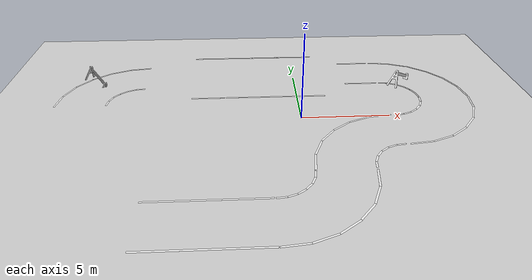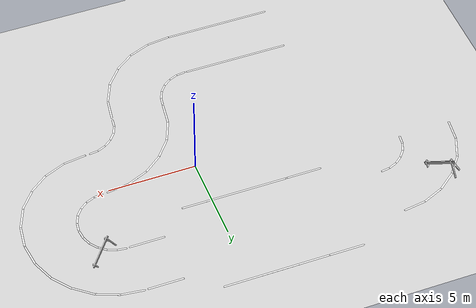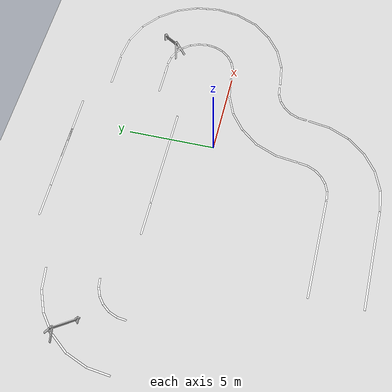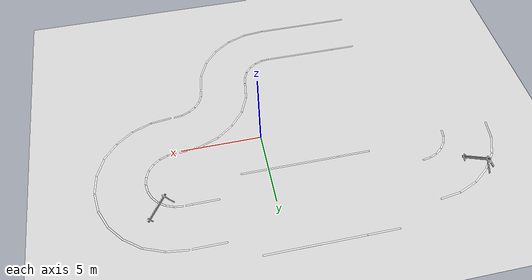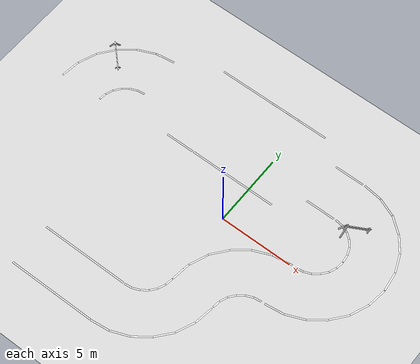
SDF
<sdf version="1.10">
 <world name="igvc_world">
  <physics name="1ms" type="ignored">
   <max_step_size>0.001</max_step_size>
   <real_time_factor>1</real_time_factor>
   <real_time_update_rate>1000</real_time_update_rate>
  </physics>
  <plugin name="gz::sim::systems::Physics" filename="gz-sim-physics-system"/>
  <plugin name="gz::sim::systems::UserCommands" filename="gz-sim-user-commands-system"/>
  <plugin name="gz::sim::systems::SceneBroadcaster" filename="gz-sim-scene-broadcaster-system"/>
  <plugin name="gz::sim::systems::Contact" filename="gz-sim-contact-system"/>
  <plugin name="gz::sim::systems::Sensors" filename="gz-sim-sensors-system">
   <render_engine>ogre2</render_engine>
  </plugin>
  <plugin name="gz::sim::systems::Imu" filename="gz-sim-imu-system"/>
  <plugin name="gz::sim::systems::NavSat" filename="gz-sim-navsat-system"/>
  <gravity>0 0 -9.8000000000000007</gravity>
  <spherical_coordinates>
   <surface_model>EARTH_WGS84</surface_model>
   <world_frame_orientation>ENU</world_frame_orientation>
   <latitude_deg>42.66817418335898</latitude_deg>
   <longitude_deg>-83.21899847120743</longitude_deg>
   <elevation>269.7</elevation>
   <heading_deg>0</heading_deg>
  </spherical_coordinates>
  <magnetic_field>5.5644999999999998e-06 2.2875799999999999e-05 -4.2388400000000002e-05</magnetic_field>
  <atmosphere type="adiabatic"/>
  <scene>
   <ambient>0.400000006 0.400000006 0.400000006 1</ambient>
   <background>0.699999988 0.699999988 0.699999988 1</background>
   <shadows>true</shadows>
  </scene>
  <model name="ground_plane">
   <static>true</static>
   <link name="link">
    <collision name="collision">
     <geometry><plane><normal>0 0 1</normal><size>100 100</size></plane></geometry>
    </collision>
    <visual name="visual">
     <geometry><plane><normal>0 0 1</normal><size>100 100</size></plane></geometry>
     <material>
      <ambient>0.800000012 0.800000012 0.800000012 1</ambient>
      <diffuse>0.800000012 0.800000012 0.800000012 1</diffuse>
      <specular>0.800000012 0.800000012 0.800000012 1</specular>
     </material>
    </visual>
    <inertial>
     <mass>1</mass>
     <inertia><ixx>1</ixx><ixy>0</ixy><ixz>0</ixz><iyy>1</iyy><iyz>0</iyz><izz>1</izz></inertia>
    </inertial>
   </link>
  </model>
  <include>
   <uri>model://lane_straight_pair_6m</uri>
   <name>Lane Straight Pair 6m</name>
   <pose>-4.9743023760252161 -7.9543228653201172 0 0 0 0</pose>
  </include>
  <include>
   <uri>model://lane_curve_pair_2m</uri>
   <name>Lane Curve Pair 2m</name>
   <pose>-1.8596299886703491 -4.9635100364685059 0 0 0 -1.5878100345629131</pose>
  </include>
  <include>
   <uri>model://lane_curve_pair_2m</uri>
   <name>Lane Curve Pair 2m_0</name>
   <pose>5.151710033416748 -4.9176301956176758 0 0 0 1.5749499858617302</pose>
  </include>
  <include>
   <uri>model://lane_curve_pair_2m</uri>
   <name>Lane Curve Pair 2m_1</name>
   <pose>5.3723864555358887 2.0842623710632324 0 0 0 -1.5715100415395797</pose>
  </include>
  <include>
   <uri>model://lane_curve_pair_2m</uri>
   <name>Lane Curve Pair 2m_2</name>
   <pose>5.3652750708257138 2.1312479897817362 0 0 0 0</pose>
  </include>
  <include>
   <uri>model://lane_straight_pair_2m</uri>
   <name>Lane Straight Pair 2m</name>
   <pose>4.2250572784419234 6.1160582391792992 0 0 0 0</pose>
  </include>
  <include>
   <uri>model://lane_straight_single_6m</uri>
   <name>Lane Straight Single 6m</name>
   <pose>-1.5059652328491211 8.379969596862793 0 0 0 0</pose>
  </include>
  <include>
   <uri>model://lane_straight_single_2m</uri>
   <name>Lane Straight Single 2m</name>
   <pose>-5.4587502479553223 8.3792400360107422 0 0 0 0</pose>
  </include>
  <include>
   <uri>model://lane_straight_single_2m</uri>
   <name>Lane Straight Single 2m_1</name>
   <pose>-1.578258963538353 8.3844728309346408 0 0 0 0</pose>
  </include>
  <include>
   <uri>model://lane_straight_single_6m</uri>
   <name>Lane Straight Single 6m_0</name>
   <pose>-1.283840460016572 2.5739677250667623 0 0 0 0</pose>
  </include>
  <include>
   <uri>model://lane_straight_single_2m</uri>
   <name>Lane Straight Single 2m_3</name>
   <pose>-5.3543260887796773 2.563944547939871 0 0 0 0</pose>
  </include>
  <include>
   <uri>model://lane_curve_pair_2m</uri>
   <name>Lane Curve Pair 2m_3</name>
   <pose>-9.3193235397338867 1.9721558094024658 0 0 0 1.5851899369630984</pose>
  </include>
  <include>
   <uri>model://sawhorse</uri>
   <name>Sawhorse</name>
   <pose>6.537612362869071 3.9872117059888343 -0.3220026570352244 -3.0582751199476056e-05 -0.45989662883786236 -2.3812854460632491</pose>
  </include>
  <include>
   <uri>model://sawhorse</uri>
   <name>Sawhorse_0</name>
   <pose>-12.657627266041271 5.1725731874992622 -0.32199882771196525 -2.7340617148317268e-05 -0.45989055615538149 2.368573634285644</pose>
  </include>
  <light name="sun" type="directional">
   <pose>0 0 10 0 0 0</pose>
   <intensity>1</intensity>
   <direction>-0.5 0.10000000000000001 -0.90000000000000002</direction>
   <diffuse>0.800000012 0.800000012 0.800000012 1</diffuse>
   <specular>0.200000003 0.200000003 0.200000003 1</specular>
   <attenuation>
    <range>1000</range>
    <linear>0.01</linear>
    <constant>0.90000000000000002</constant>
    <quadratic>0.001</quadratic>
   </attenuation>
   <spot><inner_angle>0</inner_angle><outer_angle>0</outer_angle><falloff>0</falloff></spot>
  </light>
 </world>
</sdf>

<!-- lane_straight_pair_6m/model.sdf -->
<sdf version="1.4">
  <model name="Lane Straight Pair 6m">
    <static>true</static>
    <link name="link">
      <collision name="collision">
        <pose>0 0 -0.002 0 0 0</pose>
        <geometry>
          <box>
            <size>0.5 0.5 0.001</size>
          </box>
        </geometry>
      </collision>
      <visual name="lane_0">
        <pose>0 1 0.001 0 0 0</pose>
        <cast_shadows>false</cast_shadows>
        <geometry>
          <plane>
            <normal>0 0 1</normal>
            <size>6 0.10</size>
          </plane>
        </geometry>
        <material>
          <script>
            <uri>file://media/materials/scripts/gazebo.material</uri>
            <name>Gazebo/White</name>
          </script>
        </material>
      </visual>
      <visual name="lane_1">
        <pose>0 -2 0.001 0 0 0</pose>
        <cast_shadows>false</cast_shadows>
        <geometry>
          <plane>
            <normal>0 0 1</normal>
            <size>6 0.10</size>
          </plane>
        </geometry>
        <material>
          <script>
            <uri>file://media/materials/scripts/gazebo.material</uri>
            <name>Gazebo/White</name>
          </script>
        </material>
      </visual>
    </link>
  </model>
</sdf>

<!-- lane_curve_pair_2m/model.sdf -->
<sdf version="1.4">
  <model name="Lane Curve Pair 2m">
    <static>true</static>
    <link name="link">
      <collision name="collision">
        <pose>0.5 0.5 -0.002 0 0 0</pose>
        <geometry>
          <box>
            <size>0.5 0.5 0.001</size>
          </box>
        </geometry>
      </collision>
      <visual name="lane_l0">
        <pose>4.9148 0.64705 0.001 0 0 1.7017</pose>
        <cast_shadows>false</cast_shadows>
        <geometry>
          <plane>
            <normal>0 0 1</normal>
            <size>1.309 0.10</size>
          </plane>
        </geometry>
        <material>
          <script>
            <uri>file://media/materials/scripts/gazebo.material</uri>
            <name>Gazebo/White</name>
          </script>
        </material>
      </visual>
      <visual name="lane_l15">
        <pose>4.5799 1.897 0.001 0 0 1.9635</pose>
        <cast_shadows>false</cast_shadows>
        <geometry>
          <plane>
            <normal>0 0 1</normal>
            <size>1.309 0.10</size>
          </plane>
        </geometry>
        <material>
          <script>
            <uri>file://media/materials/scripts/gazebo.material</uri>
            <name>Gazebo/White</name>
          </script>
        </material>
      </visual>
      <visual name="lane_l30">
        <pose>3.9328 3.0178 0.001 0 0 2.2253</pose>
        <cast_shadows>false</cast_shadows>
        <geometry>
          <plane>
            <normal>0 0 1</normal>
            <size>1.309 0.10</size>
          </plane>
        </geometry>
        <material>
          <script>
            <uri>file://media/materials/scripts/gazebo.material</uri>
            <name>Gazebo/White</name>
          </script>
        </material>
      </visual>
      <visual name="lane_l45">
        <pose>3.0178 3.9328 0.001 0 0 2.4571</pose>
        <cast_shadows>false</cast_shadows>
        <geometry>
          <plane>
            <normal>0 0 1</normal>
            <size>1.309 0.10</size>
          </plane>
        </geometry>
        <material>
          <script>
            <uri>file://media/materials/scripts/gazebo.material</uri>
            <name>Gazebo/White</name>
          </script>
        </material>
      </visual>
      <visual name="lane_l60">
        <pose>1.897 4.57990 0.001 0 0 2.7489</pose>
        <cast_shadows>false</cast_shadows>
        <geometry>
          <plane>
            <normal>0 0 1</normal>
            <size>1.309 0.10</size>
          </plane>
        </geometry>
        <material>
          <script>
            <uri>file://media/materials/scripts/gazebo.material</uri>
            <name>Gazebo/White</name>
          </script>
        </material>
      </visual>
      <visual name="lane_l75">
        <pose>0.64705 4.9148 0.001 0 0 3.0107</pose>
        <cast_shadows>false</cast_shadows>
        <geometry>
          <plane>
            <normal>0 0 1</normal>
            <size>1.309 0.10</size>
          </plane>
        </geometry>
        <material>
          <script>
            <uri>file://media/materials/scripts/gazebo.material</uri>
            <name>Gazebo/White</name>
          </script>
        </material>
      </visual>

      <visual name="lane_r0">
        <pose>1.9659 0.25882 0.001 0 0 1.7017</pose>
        <cast_shadows>false</cast_shadows>
        <geometry>
          <plane>
            <normal>0 0 1</normal>
            <size>0.5236 0.10</size>
          </plane>
        </geometry>
        <material>
          <script>
            <uri>file://media/materials/scripts/gazebo.material</uri>
            <name>Gazebo/White</name>
          </script>
        </material>
      </visual>
      <visual name="lane_r15">
        <pose>1.832 0.75882 0.001 0 0 1.9635</pose>
        <cast_shadows>false</cast_shadows>
        <geometry>
          <plane>
            <normal>0 0 1</normal>
            <size>0.5236 0.10</size>
          </plane>
        </geometry>
        <material>
          <script>
            <uri>file://media/materials/scripts/gazebo.material</uri>
            <name>Gazebo/White</name>
          </script>
        </material>
      </visual>
      <visual name="lane_r30">
        <pose>1.5731 1.2071 0.001 0 0 2.2253</pose>
        <cast_shadows>false</cast_shadows>
        <geometry>
          <plane>
            <normal>0 0 1</normal>
            <size>0.5236 0.10</size>
          </plane>
        </geometry>
        <material>
          <script>
            <uri>file://media/materials/scripts/gazebo.material</uri>
            <name>Gazebo/White</name>
          </script>
        </material>
      </visual>
      <visual name="lane_r45">
        <pose>1.2071 1.5731 0.001 0 0 2.4571</pose>
        <cast_shadows>false</cast_shadows>
        <geometry>
          <plane>
            <normal>0 0 1</normal>
            <size>0.5236 0.10</size>
          </plane>
        </geometry>
        <material>
          <script>
            <uri>file://media/materials/scripts/gazebo.material</uri>
            <name>Gazebo/White</name>
          </script>
        </material>
      </visual>
      <visual name="lane_r60">
        <pose>0.75882 1.832 0.001 0 0 2.7489</pose>
        <cast_shadows>false</cast_shadows>
        <geometry>
          <plane>
            <normal>0 0 1</normal>
            <size>0.5236 0.10</size>
          </plane>
        </geometry>
        <material>
          <script>
            <uri>file://media/materials/scripts/gazebo.material</uri>
            <name>Gazebo/White</name>
          </script>
        </material>
      </visual>
      <visual name="lane_r75">
        <pose>0.25882 1.9659 0.001 0 0 3.0107</pose>
        <cast_shadows>false</cast_shadows>
        <geometry>
          <plane>
            <normal>0 0 1</normal>
            <size>0.5236 0.10</size>
          </plane>
        </geometry>
        <material>
          <script>
            <uri>file://media/materials/scripts/gazebo.material</uri>
            <name>Gazebo/White</name>
          </script>
        </material>
      </visual>
    </link>
  </model>
</sdf>

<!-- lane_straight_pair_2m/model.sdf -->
<sdf version="1.4">
  <model name="Lane Straight Pair 2m">
    <static>true</static>
    <link name="link">
      <collision name="collision">
        <pose>0 0 -0.002 0 0 0</pose>
        <geometry>
          <box>
            <size>0.5 0.5 0.001</size>
          </box>
        </geometry>
      </collision>
      <visual name="lane_0">
        <pose>0 1 0.001 0 0 0</pose>
        <cast_shadows>false</cast_shadows>
        <geometry>
          <plane>
            <normal>0 0 1</normal>
            <size>2 0.10</size>
          </plane>
        </geometry>
        <material>
          <script>
            <uri>file://media/materials/scripts/gazebo.material</uri>
            <name>Gazebo/White</name>
          </script>
        </material>
      </visual>
      <visual name="lane_1">
        <pose>0 -2 0.001 0 0 0</pose>
        <cast_shadows>false</cast_shadows>
        <geometry>
          <plane>
            <normal>0 0 1</normal>
            <size>2 0.10</size>
          </plane>
        </geometry>
        <material>
          <script>
            <uri>file://media/materials/scripts/gazebo.material</uri>
            <name>Gazebo/White</name>
          </script>
        </material>
      </visual>
    </link>
  </model>
</sdf>

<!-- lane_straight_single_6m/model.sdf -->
<sdf version="1.4">
  <model name="Lane Straight Single 6m">
    <static>true</static>
    <link name="link">
      <collision name="collision">
        <pose>0 0 -0.002 0 0 0</pose>
        <geometry>
          <box>
            <size>0.5 0.5 0.001</size>
          </box>
        </geometry>
      </collision>
      <visual name="lane">
        <pose>0 0 0.001 0 0 0</pose>
        <cast_shadows>false</cast_shadows>
        <geometry>
          <plane>
            <normal>0 0 1</normal>
            <size>6 0.10</size>
          </plane>
        </geometry>
        <material>
          <script>
            <uri>file://media/materials/scripts/gazebo.material</uri>
            <name>Gazebo/White</name>
          </script>
        </material>
      </visual>
    </link>
  </model>
</sdf>

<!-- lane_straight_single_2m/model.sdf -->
<sdf version="1.4">
  <model name="Lane Straight Single 2m">
    <static>true</static>
    <link name="link">
      <collision name="collision">
        <pose>0 0 -0.002 0 0 0</pose>
        <geometry>
          <box>
            <size>0.5 0.5 0.001</size>
          </box>
        </geometry>
      </collision>
      <visual name="lane">
        <pose>0 0 0.001 0 0 0</pose>
        <cast_shadows>false</cast_shadows>
        <geometry>
          <plane>
            <normal>0 0 1</normal>
            <size>2 0.10</size>
          </plane>
        </geometry>
        <material>
          <script>
            <uri>file://media/materials/scripts/gazebo.material</uri>
            <name>Gazebo/White</name>
          </script>
        </material>
      </visual>
    </link>
  </model>
</sdf>

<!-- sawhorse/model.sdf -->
<sdf version="1.4">
  <model name="Sawhorse">
    <link name="link">
      <collision name="collision">
        <geometry>
          <mesh>
            <scale>1 1 1</scale>
            <uri>model://sawhorse/meshes/sawhorse_1.dae</uri>
          </mesh>
        </geometry>
      </collision>
      <visual name="visual">
        <geometry>
          <mesh>
            <scale>1 1 1</scale>
            <uri>model://sawhorse/meshes/sawhorse_1.dae</uri>
          </mesh>
        </geometry>
      </visual>
    </link>
  </model>
</sdf>
